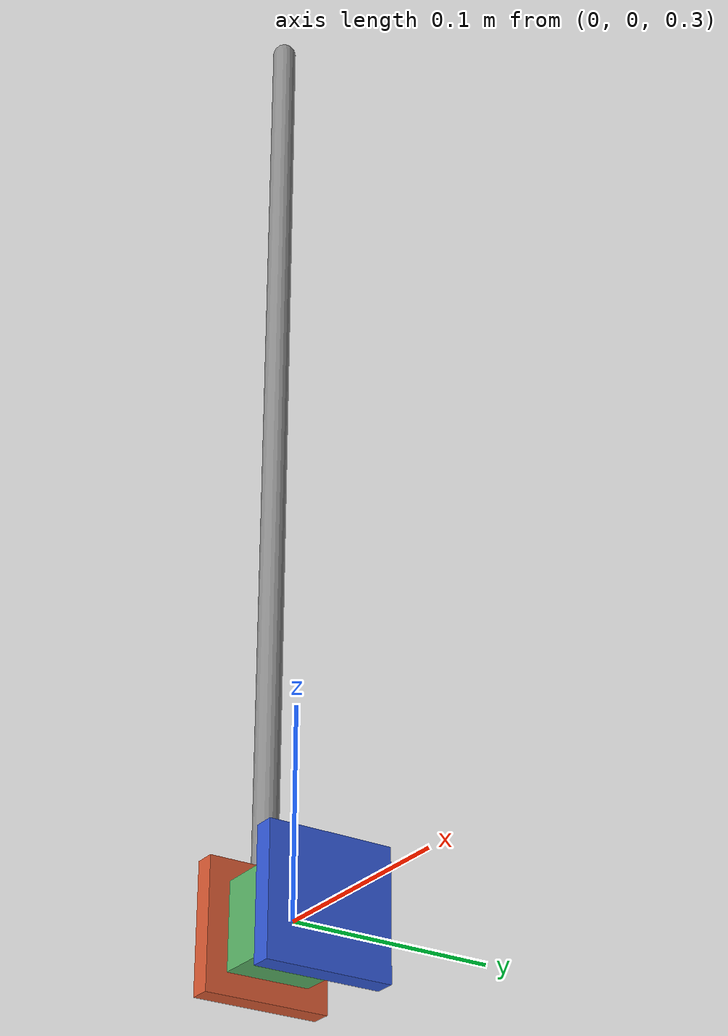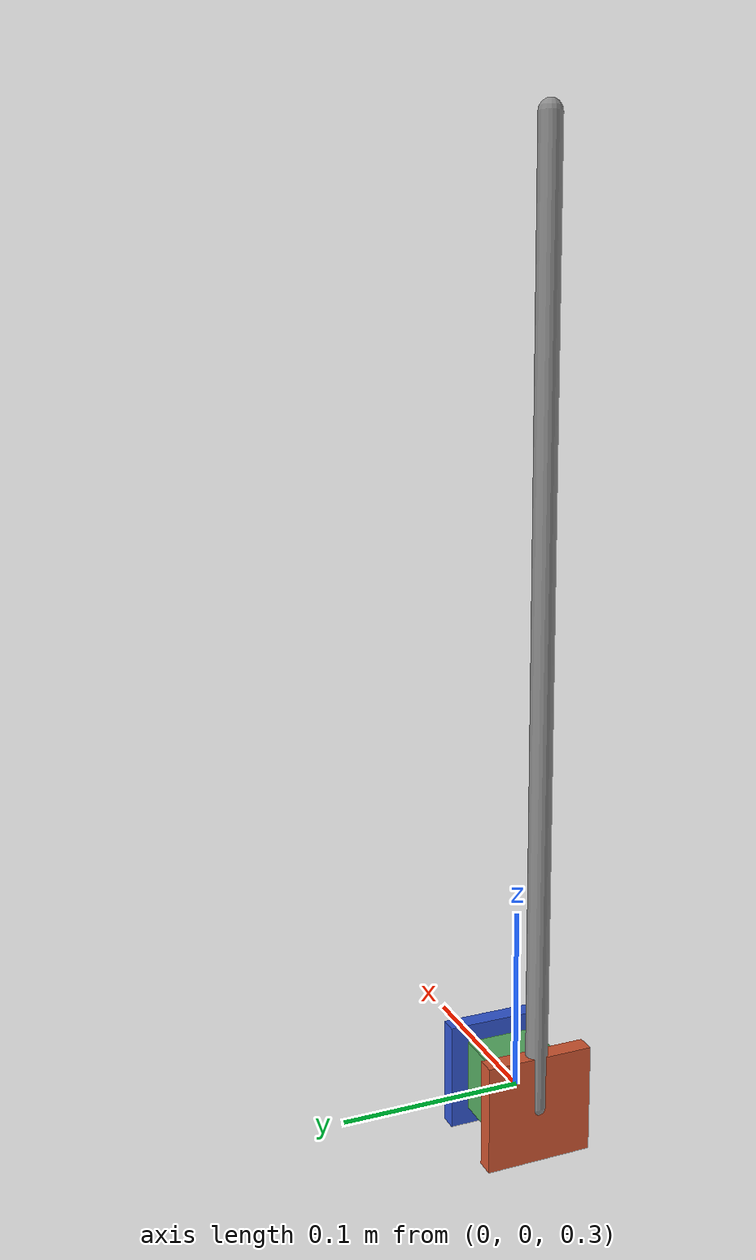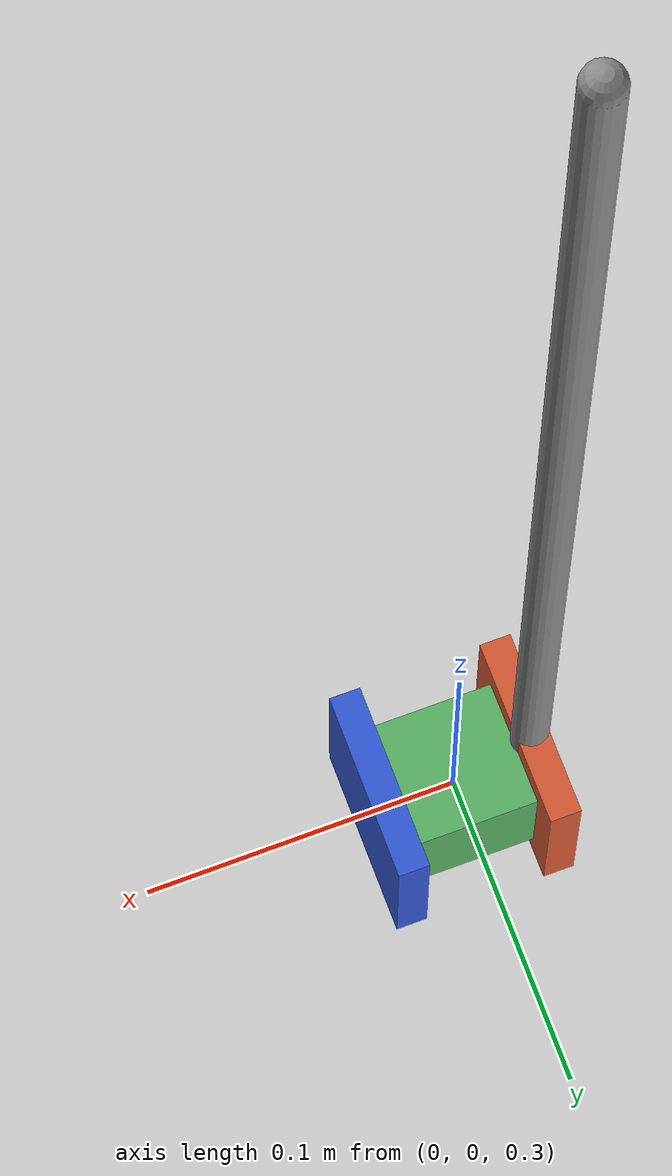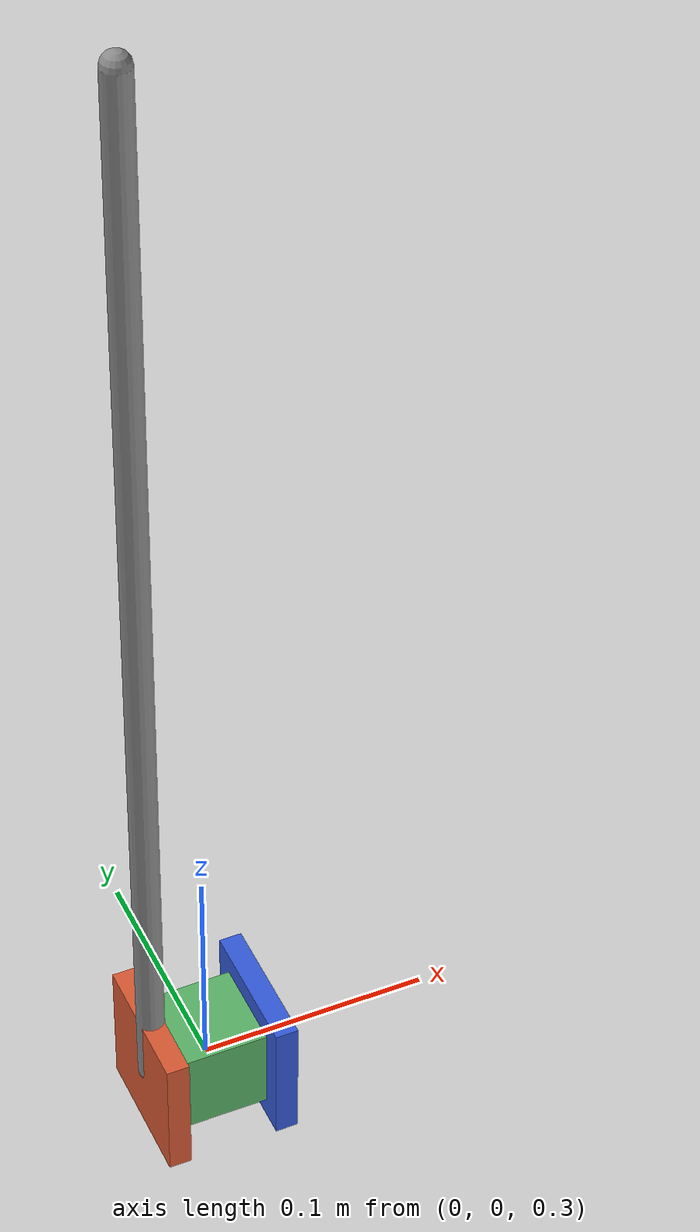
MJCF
<mujoco model="pinch_known_wrench_test">
  <compiler angle="radian"/>
  <option timestep="0.001" gravity="0 0 -9.81" integrator="implicitfast"
          solver="Newton" iterations="50"/>

  <default>
    <geom condim="4" friction="1.5 0.05 0.005" solref="0.004 1"
          solimp="0.95 0.99 0.001"/>
  </default>

  <worldbody>
    <!-- Driven pad. The arm hangs BELOW its hinge, so a point at -L swings
         towards -x for a positive rotation about +y: negative torque is the
         squeeze direction. -->
    <body name="pad_a_arm" pos="-0.0245 0 0.80">
      <joint name="ja" type="hinge" axis="0 1 0" range="-0.5 0.5" damping="20"/>
      <inertial pos="0 0 -0.25" mass="0.30" diaginertia="0.00625 0.00625 1e-5"/>
      <geom name="pad_a_mast" type="capsule" fromto="0 0 0 0 0 -0.50" size="0.006"
            contype="0" conaffinity="0" rgba="0.55 0.55 0.55 1"/>
      <!-- 40 deg about (1,1,1)/sqrt(3); the geom carries the conjugate. -->
      <body name="pad_a_link" pos="0 0 -0.50"
            quat="0.9396926 0.1974851 0.1974851 0.1974851">
        <inertial pos="0 0 0" mass="0.05" diaginertia="1e-4 1e-4 1e-4"/>
        <geom name="pad_a_contact_geom" type="box" size="0.005 0.03 0.03"
              quat="0.9396926 -0.1974851 -0.1974851 -0.1974851"
              rgba="0.85 0.35 0.2 1"/>
        <site name="pad_a_ft_site" pos="0 0 0" size="0.002" group="3"/>
      </body>
    </body>

    <body name="pad_b_link" pos="0.0245 0 0.30"
          quat="0.8870108 0 0.2064968 -0.4129936">
      <geom name="pad_b_contact_geom" type="box" size="0.005 0.03 0.03"
            quat="0.8870108 0 -0.2064968 0.4129936" rgba="0.2 0.35 0.85 1"/>
      <site name="pad_b_ft_site" pos="0 0 0" size="0.002" group="3"/>
    </body>

    <body name="object" pos="0 0 0.30">
      <joint name="object_free" type="free" damping="2"/>
      <inertial pos="0 0 0" mass="0.05" diaginertia="2e-5 2e-5 2e-5"/>
      <geom name="object_geom" type="box" size="0.02 0.02 0.02" rgba="0.35 0.7 0.4 1"/>
    </body>
  </worldbody>

  <actuator>
    <!-- gear=1 so ctrl is the hinge torque in N.m directly. -->
    <motor name="ma" joint="ja" gear="1" ctrlrange="-200 200"/>
  </actuator>

  <sensor>
    <contact name="pad_a_contact" geom1="pad_a_contact_geom" num="1"
             data="found force torque dist pos normal tangent" reduce="netforce"/>
    <contact name="pad_b_contact" geom1="pad_b_contact_geom" num="1"
             data="found force torque dist pos normal tangent" reduce="netforce"/>
  </sensor>
</mujoco>
